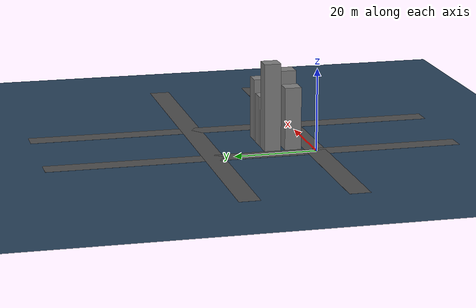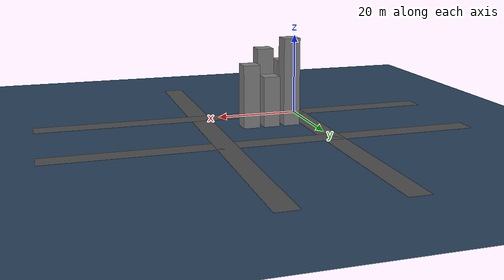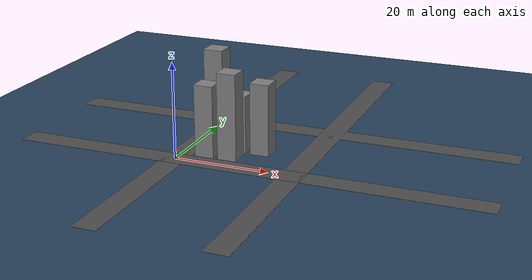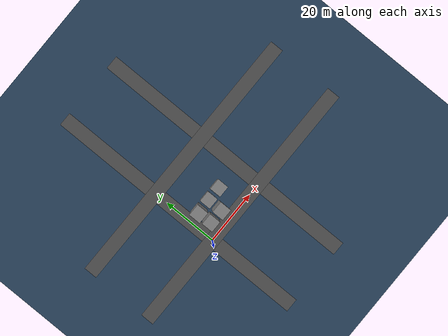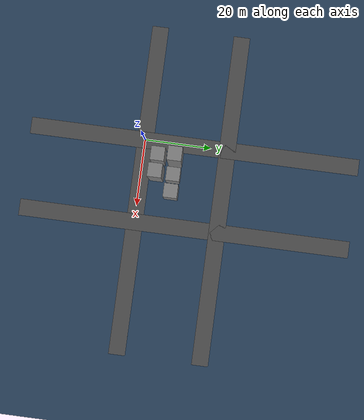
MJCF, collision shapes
<mujoco model="Skydio X2 scene">
  <include file="x2.xml"/>
  <statistic center="0 0 0.1" extent="0.6" meansize=".05"/>

  <visual>
    <headlight diffuse="0.6 0.6 0.6" ambient="0.3 0.3 0.3" specular="0 0 0"/>
    <rgba haze="0.15 0.25 0.35 1"/>
    <global azimuth="-20" elevation="-20" ellipsoidinertia="true"/>
  </visual>

  <asset>
    <texture type="skybox" builtin="gradient" rgb1="0.3 0.5 0.7" rgb2="0 0 0" width="512" height="3072"/>
    <texture type="2d" name="groundplane" builtin="checker" mark="edge" rgb1="0.2 0.3 0.4" rgb2="0.1 0.2 0.3"
      markrgb="0.8 0.8 0.8" width="300" height="300"/>
    <material name="groundplane" texture="groundplane" texuniform="true" texrepeat="5 5" reflectance="0.2"/>
    <material name="building_mat" rgba="0.5 0.5 0.5 1"/>
  </asset>

  <worldbody>
    <light pos="0 0 1.5" dir="0 0 -1" directional="true"/>
    <geom name="floor" size="0 0 0.05" type="plane" material="groundplane"/>

    <geom name="ground" type="plane" size="100 100 0.1" rgba="0.2 0.3 0.4 1"/>

    <!-- roads -->
    <geom name="road_h1" type="box" pos="15 0 0.01" size="50 2.5 0.01" rgba="0.3 0.3 0.3 1"/>
    <geom name="road_h2" type="box" pos="15 25 0.01" size="50 2.5 0.01" rgba="0.3 0.3 0.3 1"/>
    <geom name="road_v1" type="box" pos="0 15 0.01" size="2.5 50 0.01" rgba="0.3 0.3 0.3 1"/>
    <geom name="road_v2" type="box" pos="25 15 0.01" size="2.5 50 0.01" rgba="0.3 0.3 0.3 1"/>

    <!-- cuboid buildings -->
    <geom name="building1" type="box" pos="5 5 5" size="2 2 10" rgba="0.5 0.5 0.5 1" mass="1000"/>
    <geom name="building2" type="box" pos="5 10 7" size="2 2 14" rgba="0.5 0.5 0.5 1" mass="1000"/>
    <geom name="building3" type="box" pos="10 5 6" size="2 2 12" rgba="0.5 0.5 0.5 1" mass="1000"/>
    <geom name="building4" type="box" pos="10 10 4" size="2 2 8" rgba="0.5 0.5 0.5 1" mass="1000"/>
    <geom name="building5" type="box" pos="15 10 5" size="2 2 10" rgba="0.5 0.5 0.5 1" mass="1000"/>

    <!-- Dynamically moving vehicles -->

  </worldbody>
</mujoco>

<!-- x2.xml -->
<mujoco model="Skydio X2">
  <compiler autolimits="true" assetdir="assets"/>

  <option timestep="0.01" density="1.225" viscosity="1.8e-5"/>

  <default>
    <default class="x2">
      <geom mass="0" contype="1" conaffinity="1"/>
      <motor ctrlrange="0 13"/>
      <mesh scale="0.01 0.01 0.01"/>
      <default class="visual">
        <geom group="2" type="mesh" contype="0" conaffinity="0"/>
      </default>
      <default class="collision">
        <geom group="3" type="box" contype="1" conaffinity="1"/>
        <default class="rotor">
          <geom type="ellipsoid" size=".13 .13 .01" contype="1" conaffinity="1"/>
        </default>
      </default>
      <site group="5"/>
    </default>
  </default>

  <asset>
    <texture type="2d" file="X2_lowpoly_texture_SpinningProps_1024.png"/>
    <material name="phong3SG" texture="X2_lowpoly_texture_SpinningProps_1024"/>
    <material name="invisible" rgba="0 0 0 0"/>

    <mesh class="x2" file="X2_lowpoly.obj"/>
  </asset>

  <worldbody>
    <light name="spotlight" mode="targetbodycom" target="x2" pos="0 -1 2"/>
    <body name="x2" pos="0 0 0.1" childclass="x2">
      <freejoint/>
      <camera name="camera1" pos="0.2 0 0.05" quat="0.9239 0 -0.3827 0" mode="fixed"/>
      <camera name="camera2" pos="0 0 -0.05" quat="1 0 0 0" mode="fixed"/>
      <camera name="camera3" pos="-0.2 0 0.05" quat="0.7071 0 0.7071 0" mode="fixed"/>
      <camera name="camera4" pos="0 0.15 0.05" quat="0.7071 0 0 0.7071" mode="fixed"/>
      <site name="imu" pos="0 0 .02"/>
      <geom material="phong3SG" mesh="X2_lowpoly" class="visual" quat="0 0 1 1"/>
      <geom class="collision" size=".06 .027 .02" pos=".04 0 .02"/>
      <geom class="collision" size=".06 .027 .02" pos=".04 0 .06"/>
      <geom class="collision" size=".05 .027 .02" pos="-.07 0 .065"/>
      <geom class="collision" size=".023 .017 .01" pos="-.137 .008 .065" quat="1 0 0 1"/>
      <geom name="rotor1" class="rotor" pos="-.14 -.18 .05" mass=".25"/>
      <geom name="rotor2" class="rotor" pos="-.14 .18 .05" mass=".25"/>
      <geom name="rotor3" class="rotor" pos=".14 .18 .08" mass=".25"/>
      <geom name="rotor4" class="rotor" pos=".14 -.18 .08" mass=".25"/>
      <geom size=".16 .04 .02" pos="0 0 0.02" type="ellipsoid" mass=".325" class="visual" material="invisible"/>
      <site name="thrust1" pos="-.14 -.18 .05"/>
      <site name="thrust2" pos="-.14 .18 .05"/>
      <site name="thrust3" pos=".14 .18 .08"/>
      <site name="thrust4" pos=".14 -.18 .08"/>

      <!-- simple Render range -->
      <site name="rf_front" pos="0.1 0 0.05" zaxis="1 0 0"/>
      <site name="rf_left" pos="0 0 0.01" zaxis="0 -1 0"/>
      <site name="rf_down" pos="0 0 -0.05" zaxis="0 0 -1"/>
      <site name="rf_right" pos="0 0.1 0.05" zaxis="0 1 0"/>

      <!-- 360 Lidar -->
      <site name="rf_0" pos="0.1 0 0.05" zaxis="1 0 0"/>
      <site name="rf_15" pos="0.1 0 0.05" zaxis="0.9659 0.2588 0"/>
      <site name="rf_30" pos="0.1 0 0.05" zaxis="0.8660 0.5 0"/>
      <site name="rf_45" pos="0.1 0 0.05" zaxis="0.7071 0.7071 0"/>
      <site name="rf_60" pos="0.1 0 0.05" zaxis="0.5 0.8660 0"/>
      <site name="rf_75" pos="0.1 0 0.05" zaxis="0.2588 0.9659 0"/>
      <site name="rf_90" pos="0.1 0 0.05" zaxis="0 1 0"/>
      <site name="rf_105" pos="0.1 0 0.05" zaxis="-0.2588 0.9659 0"/>
      <site name="rf_120" pos="0.1 0 0.05" zaxis="-0.5 0.8660 0"/>
      <site name="rf_135" pos="0.1 0 0.05" zaxis="-0.7071 0.7071 0"/>
      <site name="rf_150" pos="0.1 0 0.05" zaxis="-0.8660 0.5 0"/>
      <site name="rf_165" pos="0.1 0 0.05" zaxis="-0.9659 0.2588 0"/>
      <site name="rf_180" pos="0.1 0 0.05" zaxis="-1 0 0"/>
      <site name="rf_195" pos="0.1 0 0.05" zaxis="-0.9659 -0.2588 0"/>
      <site name="rf_210" pos="0.1 0 0.05" zaxis="-0.8660 -0.5 0"/>
      <site name="rf_225" pos="0.1 0 0.05" zaxis="-0.7071 -0.7071 0"/>
      <site name="rf_240" pos="0.1 0 0.05" zaxis="-0.5 -0.8660 0"/>
      <site name="rf_255" pos="0.1 0 0.05" zaxis="-0.2588 -0.9659 0"/>
      <site name="rf_270" pos="0.1 0 0.05" zaxis="0 -1 0"/>
      <site name="rf_285" pos="0.1 0 0.05" zaxis="0.2588 -0.9659 0"/>
      <site name="rf_300" pos="0.1 0 0.05" zaxis="0.5 -0.8660 0"/>
      <site name="rf_315" pos="0.1 0 0.05" zaxis="0.7071 -0.7071 0"/>
      <site name="rf_330" pos="0.1 0 0.05" zaxis="0.8660 -0.5 0"/>
      <site name="rf_345" pos="0.1 0 0.05" zaxis="0.9659 -0.2588 0"/>
    </body>
  </worldbody>

  <actuator>
    <motor class="x2" name="thrust1" site="thrust1" gear="0 0 1 0 0 -.0201"/>
    <motor class="x2" name="thrust2" site="thrust2" gear="0 0 1 0 0  .0201"/>
    <motor class="x2" name="thrust3" site="thrust3" gear="0 0 1 0 0  .0201"/>
    <motor class="x2" name="thrust4" site="thrust4" gear="0 0 1 0 0 -.0201"/>
  </actuator>

  <sensor>
    <gyro name="body_gyro" site="imu"/>
    <accelerometer name="body_linacc" site="imu"/>
    <framequat name="body_quat" objtype="site" objname="imu"/>

    <!-- 360 Lidar -->
    <rangefinder name="body_rf_0" site="rf_0" cutoff="10" noise="0.01"/>
    <rangefinder name="body_rf_15" site="rf_15" cutoff="10" noise="0.01"/>
    <rangefinder name="body_rf_30" site="rf_30" cutoff="10" noise="0.01"/>
    <rangefinder name="body_rf_45" site="rf_45" cutoff="10" noise="0.01"/>
    <rangefinder name="body_rf_60" site="rf_60" cutoff="10" noise="0.01"/>
    <rangefinder name="body_rf_75" site="rf_75" cutoff="10" noise="0.01"/>
    <rangefinder name="body_rf_90" site="rf_90" cutoff="10" noise="0.01"/>
    <rangefinder name="body_rf_105" site="rf_105" cutoff="10" noise="0.01"/>
    <rangefinder name="body_rf_120" site="rf_120" cutoff="10" noise="0.01"/>
    <rangefinder name="body_rf_135" site="rf_135" cutoff="10" noise="0.01"/>
    <rangefinder name="body_rf_150" site="rf_150" cutoff="10" noise="0.01"/>
    <rangefinder name="body_rf_165" site="rf_165" cutoff="10" noise="0.01"/>
    <rangefinder name="body_rf_180" site="rf_180" cutoff="10" noise="0.01"/>
    <rangefinder name="body_rf_195" site="rf_195" cutoff="10" noise="0.01"/>
    <rangefinder name="body_rf_210" site="rf_210" cutoff="10" noise="0.01"/>
    <rangefinder name="body_rf_225" site="rf_225" cutoff="10" noise="0.01"/>
    <rangefinder name="body_rf_240" site="rf_240" cutoff="10" noise="0.01"/>
    <rangefinder name="body_rf_255" site="rf_255" cutoff="10" noise="0.01"/>
    <rangefinder name="body_rf_270" site="rf_270" cutoff="10" noise="0.01"/>
    <rangefinder name="body_rf_285" site="rf_285" cutoff="10" noise="0.01"/>
    <rangefinder name="body_rf_300" site="rf_300" cutoff="10" noise="0.01"/>
    <rangefinder name="body_rf_315" site="rf_315" cutoff="10" noise="0.01"/>
    <rangefinder name="body_rf_330" site="rf_330" cutoff="10" noise="0.01"/>
    <rangefinder name="body_rf_345" site="rf_345" cutoff="10" noise="0.01"/>
  </sensor>

  <keyframe>
    <key name="hover" qpos="0 0 .3 1 0 0 0" ctrl="3.2495625 3.2495625 3.2495625 3.2495625"/>
  </keyframe>
</mujoco>
